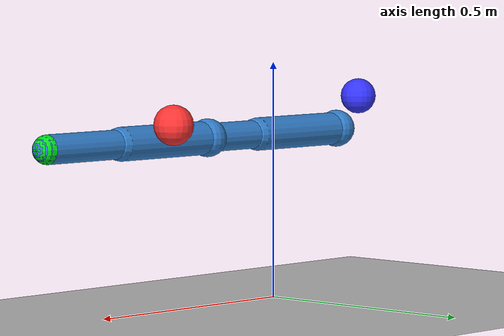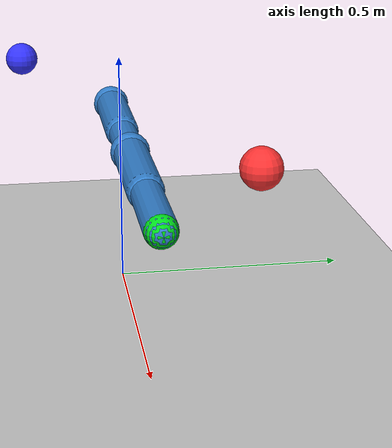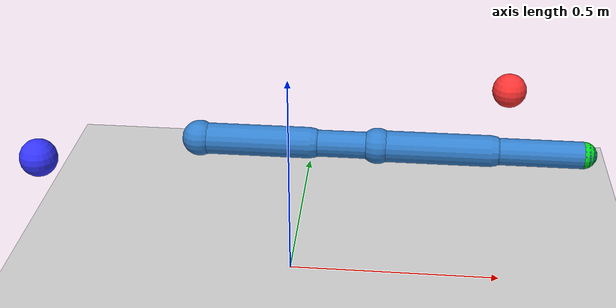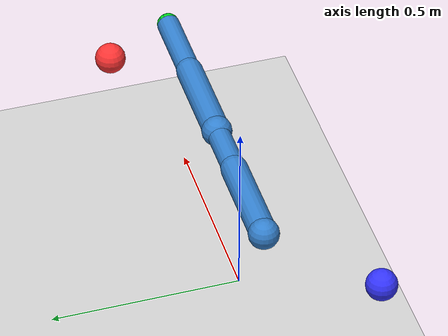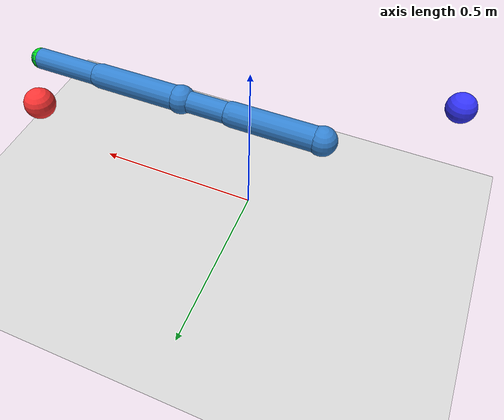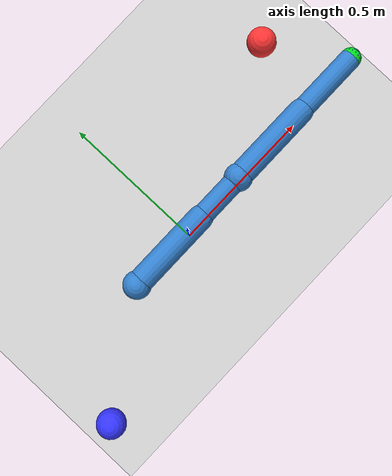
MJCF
<mujoco model="upper_body_bimanual">
  <!-- 编译器和仿真选项 -->
  <compiler angle='degree'/>
  <option gravity='0 0 -9.81' timestep='0.005'/>

  <!-- 材质定义 -->
  <asset>
    <material name='ground_mat' rgba='0.8 0.8 0.8 1'/>
    <material name='robot_mat' rgba='0.2 0.5 0.8 1'/>
    <material name='target_right' rgba='1 0.2 0.2 1'/>
    <material name='target_left' rgba='0.2 0.2 1 1'/>
    <material name='ee_green' rgba='0 1 0 0.8'/>
    <material name='ee_blue' rgba='0 0.6 1 0.8'/>
  </asset>

  <worldbody>
    <!-- 地面 -->
    <geom name='floor' type='plane' size='5 5 0.1' material='ground_mat'/>

    <!-- ==================== 右臂（从机器人底座出发） ==================== -->
    <body name='r_shoulder' pos='0.2 0.0 0.35'>
      <joint name='r_shoulder_yaw' type='hinge' axis='0 0 1' range='-90 90' damping='0.8' ref='0.0'/>
      <geom type='sphere' size='0.04' material='robot_mat'/>
      <body name='r_upper_arm' pos='0 0 0'>
        <joint name='r_shoulder_pitch' type='hinge' axis='0 1 0' range='-175 10' damping='0.8' ref='-20'/>
        <geom type='capsule' fromto='0 0 0 0.25 0 0' size='0.035' material='robot_mat'/>
        <body name='r_elbow' pos='0.25 0 0'>
          <joint name='r_elbow' type='hinge' axis='0 1 0' range='-120 120' damping='0.5' ref='60'/>
          <geom type='sphere' size='0.03' material='robot_mat'/>
          <body name='r_forearm' pos='0 0 0'>
            <geom type='capsule' fromto='0 0 0 0.20 0 0' size='0.03' material='robot_mat'/>
            <!-- 右臂末端执行器标记点（site），用于获取末端位置和雅可比 -->
            <site name='r_ee_site' pos='0.20 0 0' size='0.03' type='sphere' material='ee_green'/>
          </body>
        </body>
      </body>
    </body>

    <!-- ==================== 左臂（与右臂对称） ==================== -->
    <body name='l_shoulder' pos='-0.2 0.0 0.35'>
      <joint name='l_shoulder_yaw' type='hinge' axis='0 0 1' range='-90 90' damping='0.8' ref='0.0'/>
      <geom type='sphere' size='0.04' material='robot_mat'/>
      <body name='l_upper_arm' pos='0 0 0'>
        <joint name='l_shoulder_pitch' type='hinge' axis='0 1 0' range='-175 10' damping='0.8' ref='-20'/>
        <geom type='capsule' fromto='0 0 0 0.25 0 0' size='0.035' material='robot_mat'/>
        <body name='l_elbow' pos='0.25 0 0'>
          <joint name='l_elbow' type='hinge' axis='0 1 0' range='-120 120' damping='0.5' ref='-60'/>
          <geom type='sphere' size='0.03' material='robot_mat'/>
          <body name='l_forearm' pos='0 0 0'>
            <geom type='capsule' fromto='0 0 0 0.20 0 0' size='0.03' material='robot_mat'/>
            <!-- 左臂末端执行器标记点 -->
            <site name='l_ee_site' pos='0.20 0 0' size='0.03' type='sphere' material='ee_blue'/>
          </body>
        </body>
      </body>
    </body>

    <!-- ==================== 可视化目标点 ==================== -->
    <!-- 右手目标点（红色）：初始在右臂前方 -->
    <body name='target_right' pos='0.5 0.2 0.4'>
      <geom type='sphere' size='0.04' material='target_right'/>
      <site name='target_right_site' pos='0 0 0' size='0.04' type='sphere' rgba='1 0.2 0.2 0.3'/>
    </body>

    <!-- 左手目标点（蓝色）：初始在左臂前方 -->
    <body name='target_left' pos='-0.5 -0.2 0.4'>
      <geom type='sphere' size='0.04' material='target_left'/>
      <site name='target_left_site' pos='0 0 0' size='0.04' type='sphere' rgba='0.2 0.2 1 0.3'/>
    </body>

    <!-- ==================== 相机 ==================== -->
    <!-- 前置相机：从正面观察机器人和目标点 -->
    <!-- 位置 (0, -1.2, 0.6)，看向场景中心 (0, 0, 0.3) -->
    <!-- 计算的正确 quat: 绕 X 轴旋转约 75.96°，使 -Z 轴对准场景 -->
    <camera name='camera_front' pos='0.0 -1.2 0.6' quat='0.7882 0.6154 0.0 0.0' fovy='45'/>

    <!-- 侧上方相机：从右侧俯瞰场景 -->
    <!-- 位置 (1.2, 0, 1.0)，看向场景中心 (0, 0, 0.3) -->
    <!-- 计算的正确 quat: 绕 Y 轴旋转约 59.74°，使 -Z 轴对准场景 -->
    <camera name='camera_side' pos='1.2 0.0 1.0' quat='0.8671 0.0 0.4981 0.0' fovy='45'/>
  </worldbody>

  <!-- 执行器：使用 position 控制模式，kp 越大响应越快但可能振荡 -->
  <actuator>
    <!-- 右臂执行器 -->
    <position name='r_shoulder_yaw_act' joint='r_shoulder_yaw' kp='30' ctrlrange='-1.57 1.57'/>
    <position name='r_shoulder_pitch_act' joint='r_shoulder_pitch' kp='30' ctrlrange='-2.53 0.17'/>
    <position name='r_elbow_act' joint='r_elbow' kp='20' ctrlrange='-1.57 1.57'/>

    <!-- 左臂执行器 -->
    <position name='l_shoulder_yaw_act' joint='l_shoulder_yaw' kp='30' ctrlrange='-1.57 1.57'/>
    <position name='l_shoulder_pitch_act' joint='l_shoulder_pitch' kp='30' ctrlrange='-2.53 0.17'/>
    <position name='l_elbow_act' joint='l_elbow' kp='20' ctrlrange='-1.57 1.57'/>
  </actuator>
</mujoco>
